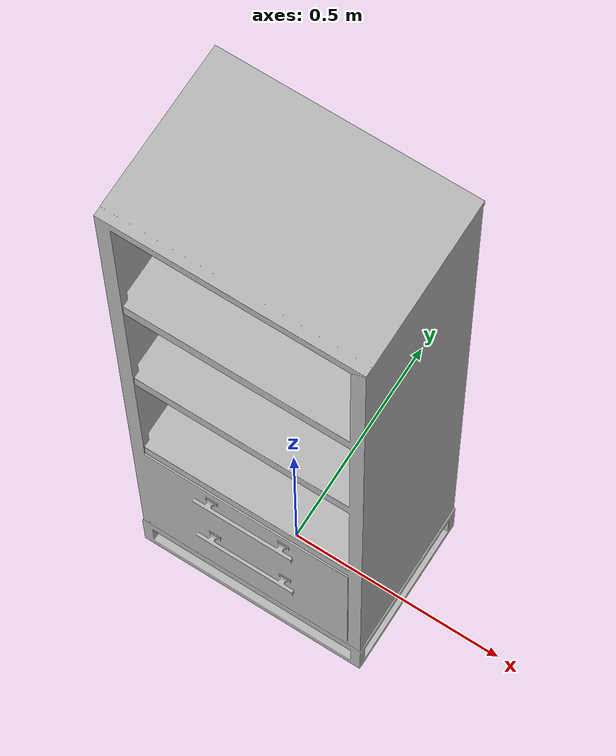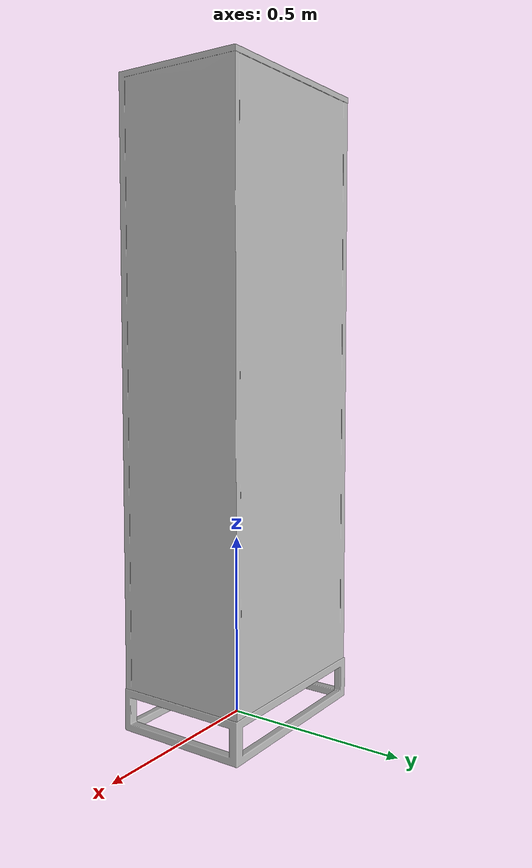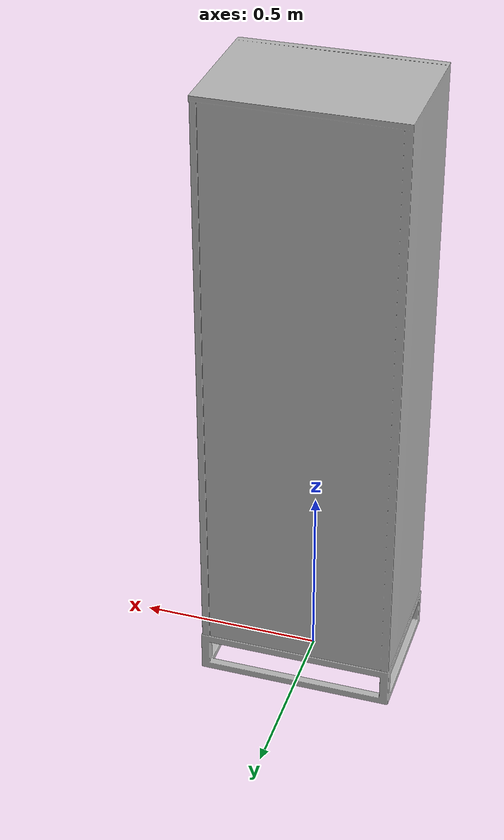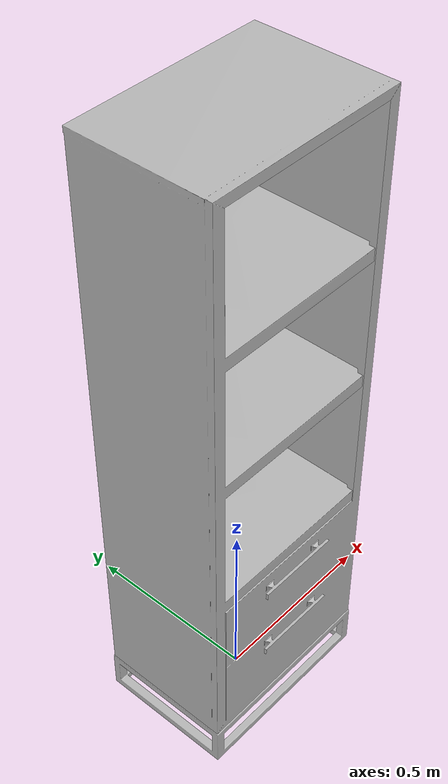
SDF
<sdf version="1.6">
	<model name="Bookcases_O4e13d24e8d40_lod0">
		<link name="main_link">
			<visual name="visual_RootNode">
				<geometry>
					<mesh>
						<uri>model://Bookcases_O4e13d24e8d40_lod0/meshes/visual_RootNode.dae</uri>
					</mesh>
				</geometry>
			</visual>
			<collision name="collision_RootNode_lod0_0">
				<geometry>
					<mesh>
						<uri>model://Bookcases_O4e13d24e8d40_lod0/meshes/collision_RootNode_lod0_0.dae</uri>
					</mesh>
				</geometry>
			</collision>
		</link>
	</model>
</sdf>
